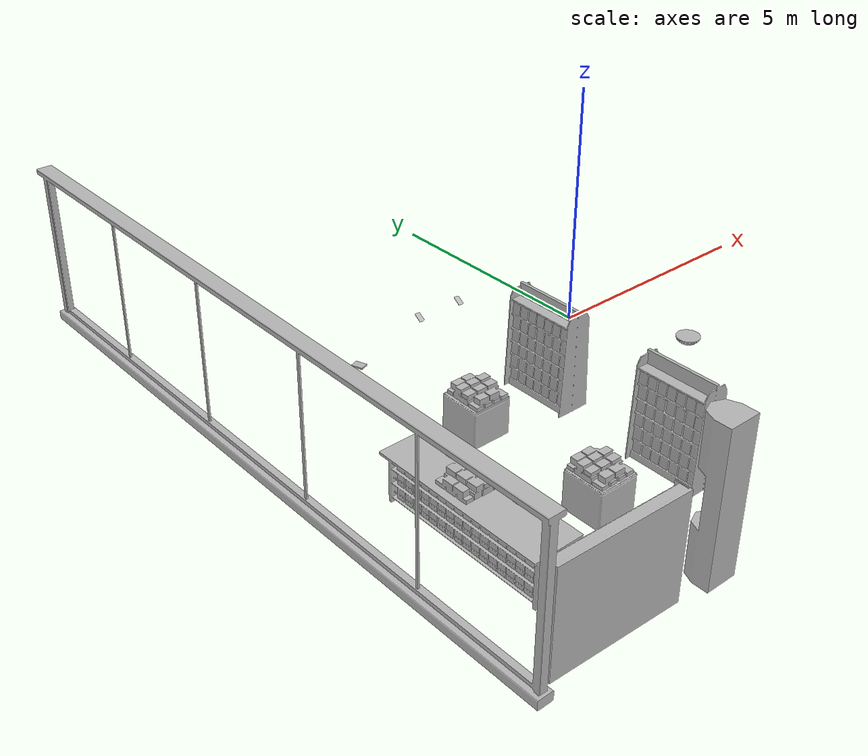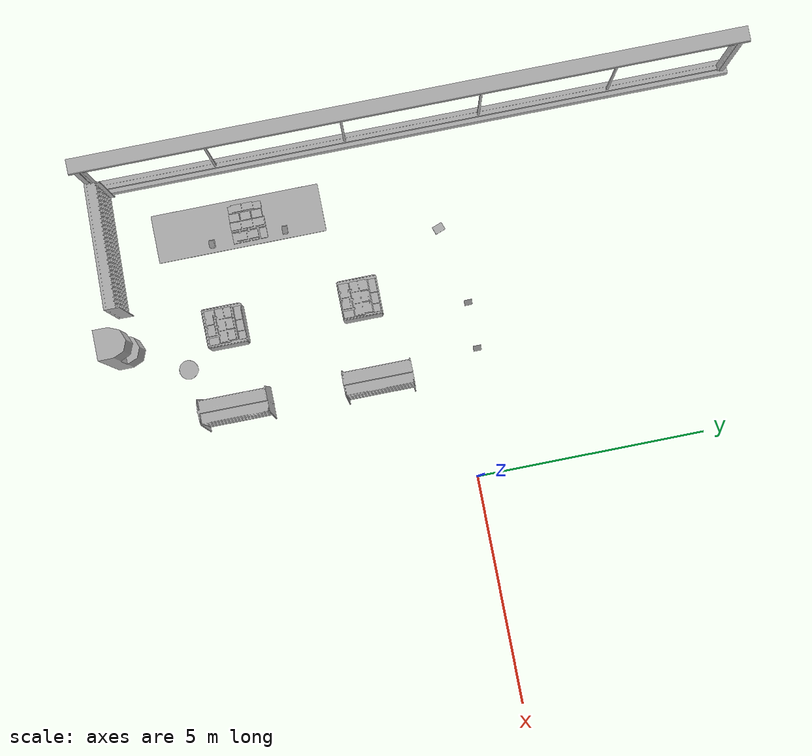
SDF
<sdf version="1.7">
 <world name="default">
  <model name="BookE_01_012">
   <frame name="aws_robomaker_retail_BookE_01::__model__" attached_to="aws_robomaker_retail_BookE_01::link">
    <pose relative_to="__model__">0 0 0 0 -0 0</pose>
   </frame>
   <link name="aws_robomaker_retail_BookE_01::link">
    <inertial>
     <mass>1</mass>
     <inertia><ixy>0</ixy><ixz>0</ixz><iyz>0</iyz><ixx>0.0666</ixx><iyy>0.0346</iyy><izz>0.0986</izz></inertia>
    </inertial>
    <collision name="collision">
     <geometry>
      <mesh>
       <uri>model://aws_robomaker_retail_BookE_01/meshes/aws_BookE_01_collision.DAE</uri>
       <scale>1 1 1</scale>
      </mesh>
     </geometry>
    </collision>
    <visual name="visual">
     <geometry>
      <mesh><uri>model://aws_robomaker_retail_BookE_01/meshes/aws_BookE_01_visual.DAE</uri></mesh>
     </geometry>
    </visual>
    <pose relative_to="aws_robomaker_retail_BookE_01::__model__">0 0 0 0 -0 0</pose>
   </link>
   <static>1</static>
   <pose>-5.33358 0.186186 0.949316 -1e-06 -0.004549 -2.79848</pose>
  </model>
  <model name="BookD_01_002">
   <frame name="aws_robomaker_retail_BookD_01::__model__" attached_to="aws_robomaker_retail_BookD_01::link">
    <pose relative_to="__model__">0 0 0 0 -0 0</pose>
   </frame>
   <link name="aws_robomaker_retail_BookD_01::link">
    <inertial><mass>0.5</mass></inertial>
    <collision name="collision">
     <geometry>
      <mesh>
       <uri>model://aws_robomaker_retail_BookD_01/meshes/aws_BookD_01_collision.DAE</uri>
       <scale>1 1 1</scale>
      </mesh>
     </geometry>
    </collision>
    <visual name="visual">
     <geometry>
      <mesh><uri>model://aws_robomaker_retail_BookD_01/meshes/aws_BookD_01_visual.DAE</uri></mesh>
     </geometry>
    </visual>
    <pose relative_to="aws_robomaker_retail_BookD_01::__model__">0 0 0 0 -0 0</pose>
   </link>
   <static>1</static>
   <pose>-4.20712 -1.75721 0.804482 0 0 -4e-06</pose>
  </model>
  <model name="BookF_01_003">
   <frame name="aws_robomaker_retail_BookF_01::__model__" attached_to="aws_robomaker_retail_BookF_01::link">
    <pose relative_to="__model__">0 0 0 0 -0 0</pose>
   </frame>
   <link name="aws_robomaker_retail_BookF_01::link">
    <inertial>
     <mass>10</mass>
     <inertia>
      <ixx>0.583817</ixx>
      <ixy>0</ixy>
      <ixz>0</ixz>
      <iyy>0.502925</iyy>
      <iyz>0</iyz>
      <izz>0.99304</izz>
     </inertia>
    </inertial>
    <collision name="collision">
     <geometry>
      <mesh>
       <uri>model://aws_robomaker_retail_BookF_01/meshes/aws_BookF_01_collision.DAE</uri>
       <scale>1 1 1</scale>
      </mesh>
     </geometry>
    </collision>
    <visual name="visual">
     <geometry>
      <mesh><uri>model://aws_robomaker_retail_BookF_01/meshes/aws_BookF_01_visual.DAE</uri></mesh>
     </geometry>
    </visual>
    <pose relative_to="aws_robomaker_retail_BookF_01::__model__">0 0 0 0 -0 0</pose>
   </link>
   <static>1</static>
   <pose>-4.19124 -4.6828 0.804483 4e-06 -0 0</pose>
  </model>
  <model name="BookD_01_003">
   <frame name="aws_robomaker_retail_BookD_01::__model__" attached_to="aws_robomaker_retail_BookD_01::link">
    <pose relative_to="__model__">0 0 0 0 -0 0</pose>
   </frame>
   <link name="aws_robomaker_retail_BookD_01::link">
    <inertial><mass>0.5</mass></inertial>
    <collision name="collision">
     <geometry>
      <mesh>
       <uri>model://aws_robomaker_retail_BookD_01/meshes/aws_BookD_01_collision.DAE</uri>
       <scale>1 1 1</scale>
      </mesh>
     </geometry>
    </collision>
    <visual name="visual">
     <geometry>
      <mesh><uri>model://aws_robomaker_retail_BookD_01/meshes/aws_BookD_01_visual.DAE</uri></mesh>
     </geometry>
    </visual>
    <pose relative_to="aws_robomaker_retail_BookD_01::__model__">0 0 0 0 -0 0</pose>
   </link>
   <static>1</static>
   <pose>-6.23561 -3.78518 1.03816 8e-06 -0 1.58038</pose>
  </model>
  <model name="BookshelfA_01_003">
   <frame name="aws_robomaker_retail_BookshelfA_01::__model__" attached_to="aws_robomaker_retail_BookshelfA_01::link">
    <pose relative_to="__model__">0 0 0 0 -0 0</pose>
   </frame>
   <link name="aws_robomaker_retail_BookshelfA_01::link">
    <inertial>
     <mass>50</mass>
     <inertia><ixx>27.7341</ixx><ixy>0</ixy><ixz>0</ixz><iyy>20.9361</iyy><iyz>0</iyz><izz>11.3596</izz></inertia>
    </inertial>
    <collision name="collision">
     <geometry>
      <mesh>
       <uri>model://aws_robomaker_retail_BookshelfA_01/meshes/aws_BookshelfA_01_collision.DAE</uri>
       <scale>1 1 1</scale>
      </mesh>
     </geometry>
    </collision>
    <visual name="visual">
     <geometry>
      <mesh><uri>model://aws_robomaker_retail_BookshelfA_01/meshes/aws_BookshelfA_01_visual.DAE</uri></mesh>
     </geometry>
    </visual>
    <pose relative_to="aws_robomaker_retail_BookshelfA_01::__model__">0 0 0 0 -0 0</pose>
   </link>
   <static>1</static>
   <pose>-2.40091 -1.68534 0.006674 0.001374 -0.001945 0.000646</pose>
  </model>
  <model name="BookshelfA_01_004">
   <frame name="aws_robomaker_retail_BookshelfA_01::__model__" attached_to="aws_robomaker_retail_BookshelfA_01::link">
    <pose relative_to="__model__">0 0 0 0 -0 0</pose>
   </frame>
   <link name="aws_robomaker_retail_BookshelfA_01::link">
    <inertial>
     <mass>50</mass>
     <inertia><ixx>27.7341</ixx><ixy>0</ixy><ixz>0</ixz><iyy>20.9361</iyy><iyz>0</iyz><izz>11.3596</izz></inertia>
    </inertial>
    <collision name="collision">
     <geometry>
      <mesh>
       <uri>model://aws_robomaker_retail_BookshelfA_01/meshes/aws_BookshelfA_01_collision.DAE</uri>
       <scale>1 1 1</scale>
      </mesh>
     </geometry>
    </collision>
    <visual name="visual">
     <geometry>
      <mesh><uri>model://aws_robomaker_retail_BookshelfA_01/meshes/aws_BookshelfA_01_visual.DAE</uri></mesh>
     </geometry>
    </visual>
    <pose relative_to="aws_robomaker_retail_BookshelfA_01::__model__">0 0 0 0 -0 0</pose>
   </link>
   <static>1</static>
   <pose>-2.40617 -4.76165 0.003411 0 -0 0</pose>
  </model>
  <model name="BookshelfB_01_001">
   <frame name="aws_robomaker_retail_BookshelfB_01::__model__" attached_to="aws_robomaker_retail_BookshelfB_01::link">
    <pose relative_to="__model__">0 0 0 0 -0 0</pose>
   </frame>
   <link name="aws_robomaker_retail_BookshelfB_01::link">
    <inertial>
     <mass>50</mass>
     <inertia><ixx>19.8742</ixx><ixy>0</ixy><ixz>0</ixz><iyy>49.1263</iyy><iyz>0</iyz><izz>30.2231</izz></inertia>
    </inertial>
    <collision name="collision">
     <geometry>
      <mesh>
       <uri>model://aws_robomaker_retail_BookshelfB_01/meshes/aws_BookshelfB_01_collision.DAE</uri>
       <scale>1 1 1</scale>
      </mesh>
     </geometry>
    </collision>
    <visual name="visual">
     <geometry>
      <mesh><uri>model://aws_robomaker_retail_BookshelfB_01/meshes/aws_BookshelfB_01_visual.DAE</uri></mesh>
     </geometry>
    </visual>
    <pose relative_to="aws_robomaker_retail_BookshelfB_01::__model__">0 0 0 0 -0 0</pose>
   </link>
   <static>1</static>
   <pose>-6.18968 -6.78565 -0.008942 0.003533 0.000121 -0.032073</pose>
  </model>
  <model name="BookshelfC_01_003">
   <frame name="aws_robomaker_retail_BookshelfC_01::__model__" attached_to="aws_robomaker_retail_BookshelfC_01::link">
    <pose relative_to="__model__">0 0 0 0 -0 0</pose>
   </frame>
   <link name="aws_robomaker_retail_BookshelfC_01::link">
    <inertial>
     <mass>50</mass>
     <inertia><ixx>5.5865</ixx><ixy>0</ixy><ixz>0</ixz><iyy>5.47324</iyy><iyz>0</iyz><izz>6.23277</izz></inertia>
    </inertial>
    <collision name="collision">
     <geometry>
      <mesh>
       <uri>model://aws_robomaker_retail_BookshelfC_01/meshes/aws_BookshelfC_01_collision.DAE</uri>
       <scale>1 1 1</scale>
      </mesh>
     </geometry>
    </collision>
    <visual name="visual">
     <geometry>
      <mesh><uri>model://aws_robomaker_retail_BookshelfC_01/meshes/aws_BookshelfC_01_visual.DAE</uri></mesh>
     </geometry>
    </visual>
    <pose relative_to="aws_robomaker_retail_BookshelfC_01::__model__">0 0 0 0 -0 0</pose>
   </link>
   <static>1</static>
   <pose>-4.22377 -1.75412 0.045908 0 -0 0</pose>
  </model>
  <model name="BookshelfC_01_004">
   <frame name="aws_robomaker_retail_BookshelfC_01::__model__" attached_to="aws_robomaker_retail_BookshelfC_01::link">
    <pose relative_to="__model__">0 0 0 0 -0 0</pose>
   </frame>
   <link name="aws_robomaker_retail_BookshelfC_01::link">
    <inertial>
     <mass>50</mass>
     <inertia><ixx>5.5865</ixx><ixy>0</ixy><ixz>0</ixz><iyy>5.47324</iyy><iyz>0</iyz><izz>6.23277</izz></inertia>
    </inertial>
    <collision name="collision">
     <geometry>
      <mesh>
       <uri>model://aws_robomaker_retail_BookshelfC_01/meshes/aws_BookshelfC_01_collision.DAE</uri>
       <scale>1 1 1</scale>
      </mesh>
     </geometry>
    </collision>
    <visual name="visual">
     <geometry>
      <mesh><uri>model://aws_robomaker_retail_BookshelfC_01/meshes/aws_BookshelfC_01_visual.DAE</uri></mesh>
     </geometry>
    </visual>
    <pose relative_to="aws_robomaker_retail_BookshelfC_01::__model__">0 0 0 0 -0 0</pose>
   </link>
   <static>1</static>
   <pose>-4.19487 -4.7056 0.045908 0 -0 0</pose>
  </model>
  <model name="ColumnB_01_002">
   <frame name="aws_robomaker_retail_ColumnB_01::__model__" attached_to="aws_robomaker_retail_ColumnB_01::link">
    <pose relative_to="__model__">0 0 0 0 -0 0</pose>
   </frame>
   <link name="aws_robomaker_retail_ColumnB_01::link">
    <inertial>
     <mass>50</mass>
     <inertia><ixx>44.5597</ixx><ixy>0</ixy><ixz>0</ixz><iyy>44.5597</iyy><iyz>0</iyz><izz>1.87942</izz></inertia>
    </inertial>
    <collision name="collision">
     <geometry>
      <mesh>
       <uri>model://aws_robomaker_retail_ColumnB_01/meshes/aws_ColumnB_01_collision.DAE</uri>
       <scale>1 1 1</scale>
      </mesh>
     </geometry>
    </collision>
    <visual name="visual">
     <geometry>
      <mesh><uri>model://aws_robomaker_retail_ColumnB_01/meshes/aws_ColumnB_01_visual.DAE</uri></mesh>
     </geometry>
    </visual>
    <pose relative_to="aws_robomaker_retail_ColumnB_01::__model__">0 0 0 0 -0 0</pose>
   </link>
   <static>1</static>
   <pose>-4.07623 -6.86071 0.017511 0.001895 -0.000628 -0.003755</pose>
  </model>
  <model name="DeskA_01_003">
   <frame name="aws_robomaker_retail_DeskA_01::__model__" attached_to="aws_robomaker_retail_DeskA_01::link">
    <pose relative_to="__model__">0 0 0 0 -0 0</pose>
   </frame>
   <link name="aws_robomaker_retail_DeskA_01::link">
    <inertial>
     <mass>20</mass>
     <inertia><ixx>3.49717</ixx><ixy>0</ixy><ixz>0</ixz><iyy>23.5599</iyy><iyz>0</iyz><izz>23.5702</izz></inertia>
    </inertial>
    <collision name="collision">
     <geometry>
      <mesh>
       <uri>model://aws_robomaker_retail_DeskA_01/meshes/aws_DeskA_01_collision.DAE</uri>
       <scale>1 1 1</scale>
      </mesh>
     </geometry>
    </collision>
    <visual name="visual">
     <geometry>
      <mesh><uri>model://aws_robomaker_retail_DeskA_01/meshes/aws_DeskA_01_visual.DAE</uri></mesh>
     </geometry>
    </visual>
    <pose relative_to="aws_robomaker_retail_DeskA_01::__model__">0 0 0 0 -0 0</pose>
   </link>
   <static>1</static>
   <pose>-6.25465 -3.9792 -0.004603 0.001948 0.001361 -1.56957</pose>
  </model>
  <model name="TabletB_01_011">
   <frame name="aws_robomaker_retail_TabletB_01::__model__" attached_to="aws_robomaker_retail_TabletB_01::link">
    <pose relative_to="__model__">0 0 0 0 -0 0</pose>
   </frame>
   <link name="aws_robomaker_retail_TabletB_01::link">
    <inertial>
     <mass>0.161</mass>
     <inertia>
      <ixx>0.346954</ixx>
      <ixy>0</ixy>
      <ixz>0</ixz>
      <iyy>0.177288</iyy>
      <iyz>0</iyz>
      <izz>0.521826</izz>
     </inertia>
    </inertial>
    <collision name="collision">
     <geometry>
      <mesh>
       <uri>model://aws_robomaker_retail_TabletB_01/meshes/aws_TabletB_01_collision.DAE</uri>
       <scale>1 1 1</scale>
      </mesh>
     </geometry>
    </collision>
    <visual name="visual">
     <geometry>
      <mesh><uri>model://aws_robomaker_retail_TabletB_01/meshes/aws_TabletB_01_visual.DAE</uri></mesh>
     </geometry>
    </visual>
    <pose relative_to="aws_robomaker_retail_TabletB_01::__model__">0 0 0 0 -0 0</pose>
   </link>
   <static>1</static>
   <pose>-5.91505 -3.03174 1.18472 0.518384 0.023341 1.56451</pose>
  </model>
  <model name="TabletB_01_012">
   <frame name="aws_robomaker_retail_TabletB_01::__model__" attached_to="aws_robomaker_retail_TabletB_01::link">
    <pose relative_to="__model__">0 0 0 0 -0 0</pose>
   </frame>
   <link name="aws_robomaker_retail_TabletB_01::link">
    <inertial>
     <mass>0.161</mass>
     <inertia>
      <ixx>0.346954</ixx>
      <ixy>0</ixy>
      <ixz>0</ixz>
      <iyy>0.177288</iyy>
      <iyz>0</iyz>
      <izz>0.521826</izz>
     </inertia>
    </inertial>
    <collision name="collision">
     <geometry>
      <mesh>
       <uri>model://aws_robomaker_retail_TabletB_01/meshes/aws_TabletB_01_collision.DAE</uri>
       <scale>1 1 1</scale>
      </mesh>
     </geometry>
    </collision>
    <visual name="visual">
     <geometry>
      <mesh><uri>model://aws_robomaker_retail_TabletB_01/meshes/aws_TabletB_01_visual.DAE</uri></mesh>
     </geometry>
    </visual>
    <pose relative_to="aws_robomaker_retail_TabletB_01::__model__">0 0 0 0 -0 0</pose>
   </link>
   <static>1</static>
   <pose>-5.91505 -4.6124 1.18472 0.518384 0.023341 1.56451</pose>
  </model>
  <model name="Tablet_01_002">
   <frame name="aws_robomaker_retail_Tablet_01::__model__" attached_to="aws_robomaker_retail_Tablet_01::link">
    <pose relative_to="__model__">0 0 0 0 -0 0</pose>
   </frame>
   <link name="aws_robomaker_retail_Tablet_01::link">
    <inertial>
     <mass>0.5</mass>
     <inertia><ixx>0.035652</ixx><ixy>0</ixy><ixz>0</ixz><iyy>0.01</iyy><iyz>0</iyz><izz>0.041207</izz></inertia>
    </inertial>
    <collision name="collision">
     <geometry>
      <mesh>
       <uri>model://aws_robomaker_retail_Tablet_01/meshes/aws_Tablet_01_collision.DAE</uri>
       <scale>1 1 1</scale>
      </mesh>
     </geometry>
    </collision>
    <visual name="visual">
     <geometry>
      <mesh><uri>model://aws_robomaker_retail_Tablet_01/meshes/aws_Tablet_01_visual.DAE</uri></mesh>
     </geometry>
    </visual>
    <pose relative_to="aws_robomaker_retail_Tablet_01::__model__">0 0 0 0 -0 0</pose>
   </link>
   <static>1</static>
   <pose>-2.65015 0.489109 1.18055 0.579329 0.041534 -0.007936</pose>
  </model>
  <model name="Tablet_01_004">
   <frame name="aws_robomaker_retail_Tablet_01::__model__" attached_to="aws_robomaker_retail_Tablet_01::link">
    <pose relative_to="__model__">0 0 0 0 -0 0</pose>
   </frame>
   <link name="aws_robomaker_retail_Tablet_01::link">
    <inertial>
     <mass>0.5</mass>
     <inertia><ixx>0.035652</ixx><ixy>0</ixy><ixz>0</ixz><iyy>0.01</iyy><iyz>0</iyz><izz>0.041207</izz></inertia>
    </inertial>
    <collision name="collision">
     <geometry>
      <mesh>
       <uri>model://aws_robomaker_retail_Tablet_01/meshes/aws_Tablet_01_collision.DAE</uri>
       <scale>1 1 1</scale>
      </mesh>
     </geometry>
    </collision>
    <visual name="visual">
     <geometry>
      <mesh><uri>model://aws_robomaker_retail_Tablet_01/meshes/aws_Tablet_01_visual.DAE</uri></mesh>
     </geometry>
    </visual>
    <pose relative_to="aws_robomaker_retail_Tablet_01::__model__">0 0 0 0 -0 0</pose>
   </link>
   <static>1</static>
   <pose>-3.63933 0.489109 1.18055 0.579329 0.041534 -0.007936</pose>
  </model>
  <model name="Holder_01_019">
   <frame name="aws_robomaker_retail_Holder_01::__model__" attached_to="aws_robomaker_retail_Holder_01::link">
    <pose relative_to="__model__">0 0 0 0 -0 0</pose>
   </frame>
   <link name="aws_robomaker_retail_Holder_01::link">
    <inertial><mass>1</mass></inertial>
    <collision name="collision">
     <geometry>
      <mesh>
       <uri>model://aws_robomaker_retail_Holder_01/meshes/aws_Holder_01_collision.DAE</uri>
       <scale>1 1 1</scale>
      </mesh>
     </geometry>
    </collision>
    <visual name="visual">
     <geometry>
      <mesh><uri>model://aws_robomaker_retail_Holder_01/meshes/aws_Holder_01_visual.DAE</uri></mesh>
     </geometry>
    </visual>
    <pose relative_to="aws_robomaker_retail_Holder_01::__model__">0 0 0 0 -0 0</pose>
   </link>
   <static>1</static>
   <pose>-5.92911 -3.03279 1.03776 0 -0 1.55</pose>
  </model>
  <model name="Holder_01_020">
   <frame name="aws_robomaker_retail_Holder_01::__model__" attached_to="aws_robomaker_retail_Holder_01::link">
    <pose relative_to="__model__">0 0 0 0 -0 0</pose>
   </frame>
   <link name="aws_robomaker_retail_Holder_01::link">
    <inertial><mass>1</mass></inertial>
    <collision name="collision">
     <geometry>
      <mesh>
       <uri>model://aws_robomaker_retail_Holder_01/meshes/aws_Holder_01_collision.DAE</uri>
       <scale>1 1 1</scale>
      </mesh>
     </geometry>
    </collision>
    <visual name="visual">
     <geometry>
      <mesh><uri>model://aws_robomaker_retail_Holder_01/meshes/aws_Holder_01_visual.DAE</uri></mesh>
     </geometry>
    </visual>
    <pose relative_to="aws_robomaker_retail_Holder_01::__model__">0 0 0 0 -0 0</pose>
   </link>
   <static>1</static>
   <pose>-5.92911 -4.60364 1.03776 0 -0 1.55</pose>
  </model>
  <model name="LightA_01_004">
   <frame name="aws_robomaker_retail_LightA_01::__model__" attached_to="aws_robomaker_retail_LightA_01::link">
    <pose relative_to="__model__">0 0 0 0 -0 0</pose>
   </frame>
   <link name="aws_robomaker_retail_LightA_01::link">
    <inertial><mass>1</mass></inertial>
    <collision name="collision">
     <geometry>
      <mesh>
       <uri>model://aws_robomaker_retail_LightA_01/meshes/aws_LightA_01_collision.DAE</uri>
       <scale>1 1 1</scale>
      </mesh>
     </geometry>
    </collision>
    <visual name="visual">
     <geometry>
      <mesh><uri>model://aws_robomaker_retail_LightA_01/meshes/aws_LightA_01_visual.DAE</uri></mesh>
     </geometry>
    </visual>
    <pose relative_to="aws_robomaker_retail_LightA_01::__model__">0 0 0 0 -0 0</pose>
   </link>
   <static>1</static>
   <pose>-3.21067 -5.38371 3.15033 0 -0 0</pose>
  </model>
  <model name="ShopWindow_01_001">
   <frame name="aws_robomaker_retail_ShopWindow_01::__model__" attached_to="aws_robomaker_retail_ShopWindow_01::link">
    <pose relative_to="__model__">0 0 0 0 -0 0</pose>
   </frame>
   <link name="aws_robomaker_retail_ShopWindow_01::link">
    <inertial><mass>1</mass></inertial>
    <collision name="collision">
     <geometry>
      <mesh>
       <uri>model://aws_robomaker_retail_ShopWindow_01/meshes/aws_ShopWindow_01_collision.DAE</uri>
       <scale>1 1 1</scale>
      </mesh>
     </geometry>
    </collision>
    <visual name="visual">
     <geometry>
      <mesh><uri>model://aws_robomaker_retail_ShopWindow_01/meshes/aws_ShopWindow_01_visual.DAE</uri></mesh>
     </geometry>
    </visual>
    <pose relative_to="aws_robomaker_retail_ShopWindow_01::__model__">0 0 0 0 -0 0</pose>
   </link>
   <static>1</static>
   <pose>-7.73816 0.01596 -0.180092 0 -0 0</pose>
  </model>
 </world>
</sdf>
